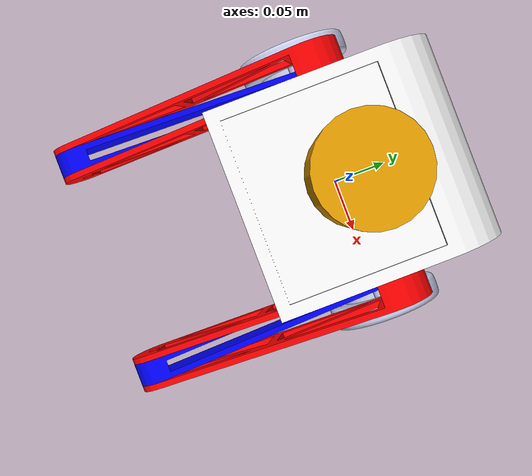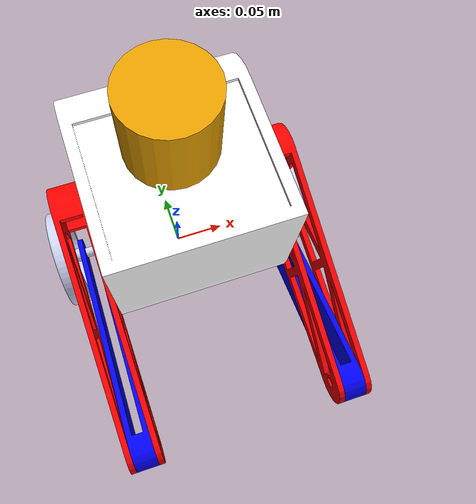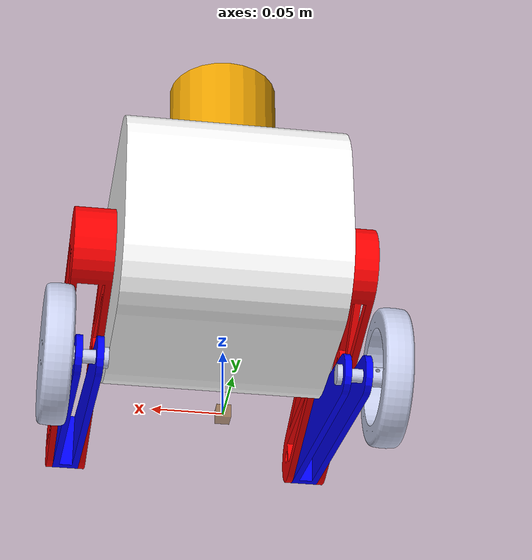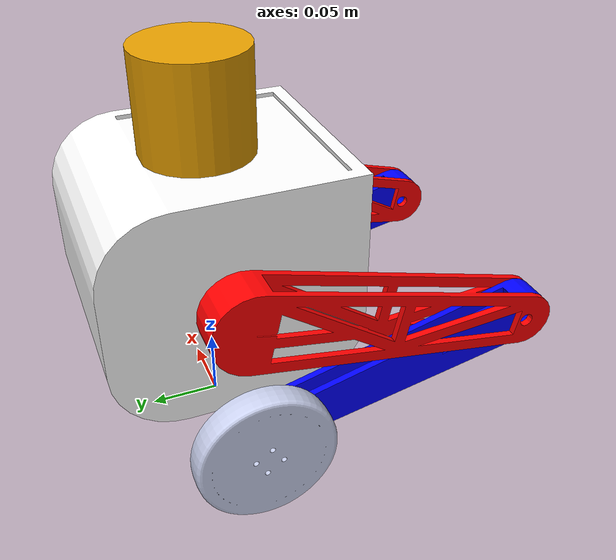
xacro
<?xml version="1.0" encoding="utf-8"?>
<robot
  name="wbrobot">
  <link name="world_link" >
    <visual>
        <geometry>
            <box size = "0.01 0.01 0.01" />
        </geometry>
        <origin xyz="0 0 0" rpy="0 0 0"/>
        <material name="yellow">
            <color rgba="0.5 0.3 0 0.5"/>
        </material>

    </visual>
  </link>
  <link
    name="base_link">
    <inertial>
      <origin
        xyz="-1.5843E-17 -0.0018258 -0.00076631"
        rpy="0 0 0" />
      <mass
        value="8" />
      <inertia
        ixx="0.052838"
        ixy="0"
        ixz="0"
        iyy="0.04905"
        iyz="-0.0011035"
        izz="0.055787" />
    </inertial>
    <visual>
      <origin
        xyz="0 0 0"
        rpy="0 0 0" />
      <geometry>
        <mesh
          filename="package://robot_description/meshes/base_link.STL" />
      </geometry>
      <material
        name="">
        <color
          rgba="1 1 1 1" />
      </material>
    </visual>
    <collision>
      <origin
        xyz="0 0 0"
        rpy="0 0 0" />
      <geometry>
        <mesh
          filename="package://robot_description/meshes/base_link.STL" />
      </geometry>
    </collision>
  </link>

  <!--world_joint-->
  <joint name="world_joint" type="fixed">
    <origin xyz="0 0 0.13" rpy="0 0 0"/>
    <parent link="world_link"/>
    <child link="base_link"/>
  </joint>

  <link
    name="datui1_Link">
    <inertial>
      <origin
        xyz="0.015766 -0.072335 -3.2958E-05"
        rpy="0 0 0" />
      <mass
        value="0.090996" />
      <inertia
        ixx="0.00063669"
        ixy="5.1817E-06"
        ixz="0"
        iyy="3.9867E-05"
        iyz="-1.7891E-06"
        izz="0.00062095" />
    </inertial>
    <visual>
      <origin
        xyz="0 0 0"
        rpy="0 0 0" />
      <geometry>
        <mesh
          filename="package://robot_description/meshes/datui1_Link.STL" />
      </geometry>
      <material
        name="red">
        <color
          rgba="1 0 0 1" />
      </material>
    </visual>
    <collision>
      <origin
        xyz="0 0 0"
        rpy="0 0 0" />
      <geometry>
        <mesh
          filename="package://robot_description/meshes/datui1_Link.STL" />
      </geometry>
    </collision>
  </link>
  <joint
    name="datui1_joint"
    type="revolute">
    <origin
      xyz="-0.08 0 0"
      rpy="2.923 0 3.1416" />
    <parent
      link="base_link" />
    <child
      link="datui1_Link" />
    <axis
      xyz="-1 0 0" />
    <limit
      lower="0"
      upper="3.14"
      effort="200"
      velocity="20" />
  </joint>
  <link
    name="xiaotui1_Link">
    <inertial>
      <origin
        xyz="-0.010009 -0.087975 0"
        rpy="0 0 0" />
      <mass
        value="0.089561" />
      <inertia
        ixx="0.00045806"
        ixy="1.3763E-07"
        ixz="0"
        iyy="1.4234E-05"
        iyz="0"
        izz="0.00045351" />
    </inertial>
    <visual>
      <origin
        xyz="0 0 0"
        rpy="0 0 0" />
      <geometry>
        <mesh
          filename="package://robot_description/meshes/xiaotui1_Link.STL" />
      </geometry>
      <material
        name="blue">
        <color
          rgba="0 0 1 1" />
      </material>
    </visual>
    <collision>
      <origin
        xyz="0 0 0"
        rpy="0 0 0" />
      <geometry>
        <mesh
          filename="package://robot_description/meshes/xiaotui1_Link.STL" />
      </geometry>
    </collision>
  </link>
  <joint
    name="xiaotui1_joint"
    type="revolute">
    <origin
      xyz="0.005 -0.21 0"
      rpy="-0.43633 0 3.1416" />
    <parent
      link="datui1_Link" />
    <child
      link="xiaotui1_Link" />
    <axis
      xyz="-1 0 0" />
    <limit
      lower="0"
      upper="3.14"
      effort="200"
      velocity="20" />
  </joint>
  <link
    name="wheel1_Link">
    <inertial>
      <origin
        xyz="-0.033743 -4.0891E-11 -1.451E-11"
        rpy="0 0 0" />
      <mass
        value="0.10249" />
      <inertia
        ixx="0.00015426"
        ixy="0"
        ixz="0"
        iyy="8.0659E-05"
        iyz="0"
        izz="8.066E-05" />
    </inertial>
    <visual>
      <origin
        xyz="0 0 0"
        rpy="0 0 0" />
      <geometry>
        <mesh
          filename="package://robot_description/meshes/wheel1_Link.STL" />
      </geometry>
      <material
        name="">
        <color
          rgba="0.79216 0.81961 0.93333 1" />
      </material>
    </visual>
    <collision>
      <origin
        xyz="0 0 0"
        rpy="0 0 0" />
      <geometry>
        <mesh
          filename="package://robot_description/meshes/wheel1_Link.STL" />
      </geometry>
    </collision>
  </link>
  <joint
    name="wheel1_joint"
    type="continuous">
    <origin
      xyz="0 -0.21 0"
      rpy="-1.1611 0 0" />
    <parent
      link="xiaotui1_Link" />
    <child
      link="wheel1_Link" />
    <axis
      xyz="-1 0 0" />
    <dynamics damping="0.05"/>
    <limit
      effort="200"
      velocity="20" />
  </joint>
  <link
    name="datui2_Link">
    <inertial>
      <origin
        xyz="0.015766 -0.072335 -3.296E-05"
        rpy="0 0 0" />
      <mass
        value="0.090996" />
      <inertia
        ixx="0.00063669"
        ixy="5.18E-06"
        ixz="0"
        iyy="3.987E-05"
        iyz="-1.79E-06"
        izz="0.00062095" />
    </inertial>
    <visual>
      <origin
        xyz="0 0 0"
        rpy="0 0 0" />
      <geometry>
        <mesh
          filename="package://robot_description/meshes/datui2_Link.STL" />
      </geometry>
      <material
        name="red">
        <color
          rgba="1 0 0 1" />
      </material>
    </visual>
    <collision>
      <origin
        xyz="0 0 0"
        rpy="0 0 0" />
      <geometry>
        <mesh
          filename="package://robot_description/meshes/datui2_Link.STL" />
      </geometry>
    </collision>
  </link>
  <joint
    name="datui2_joint"
    type="revolute">
    <origin
      xyz="0.08 0 0"
      rpy="0.218 0 0" />
    <parent
      link="base_link" />
    <child
      link="datui2_Link" />
    <axis
      xyz="1 0 0" />
    <limit
      lower="0"
      upper="3.14"
      effort="200"
      velocity="20" />
  </joint>
  <link
    name="xiaotui2_Link">
    <inertial>
      <origin
        xyz="-0.010009 -0.087975 0"
        rpy="0 0 0" />
      <mass
        value="0.089561" />
      <inertia
        ixx="0.00045806"
        ixy="1.3763E-07"
        ixz="0"
        iyy="1.4234E-05"
        iyz="0"
        izz="0.00045351" />
    </inertial>
    <visual>
      <origin
        xyz="0 0 0"
        rpy="0 0 0" />
      <geometry>
        <mesh
          filename="package://robot_description/meshes/xiaotui2_Link.STL" />
      </geometry>
      <material
        name="blue">
        <color
          rgba="0 0 1 1" />
      </material>
    </visual>
    <collision>
      <origin
        xyz="0 0 0"
        rpy="0 0 0" />
      <geometry>
        <mesh
          filename="package://robot_description/meshes/xiaotui2_Link.STL" />
      </geometry>
    </collision>
  </link>
  <joint
    name="xiaotui2_joint"
    type="revolute">
    <origin
      xyz="0.005 -0.21 0"
      rpy="0.43633 0 3.1416" />
    <parent
      link="datui2_Link" />
    <child
      link="xiaotui2_Link" />
    <axis
      xyz="1 0 0" />
    <limit
      lower="0"
      upper="3.14"
      effort="200"
      velocity="20" />
  </joint>
  <link
    name="wheel2_Link">
    <inertial>
      <origin
        xyz="-0.033743 -4.089E-11 -1.451E-11"
        rpy="0 0 0" />
      <mass
        value="0.10249" />
      <inertia
        ixx="0.00015426"
        ixy="0"
        ixz="0"
        iyy="8.0659E-05"
        iyz="0"
        izz="8.066E-05" />
    </inertial>
    <visual>
      <origin
        xyz="0 0 0"
        rpy="0 0 0" />
      <geometry>
        <mesh
          filename="package://robot_description/meshes/wheel2_Link.STL" />
      </geometry>
      <material
        name="">
        <color
          rgba="0.79216 0.81961 0.93333 1" />
      </material>
    </visual>
    <collision>
      <origin
        xyz="0 0 0"
        rpy="0 0 0" />
      <geometry>
        <mesh
          filename="package://robot_description/meshes/wheel2_Link.STL" />
      </geometry>
    </collision>
  </link>
  <joint
    name="wheel2_joint"
    type="continuous">
    <origin
      xyz="0 -0.21 0"
      rpy="-1.9805 0 0" />
    <parent
      link="xiaotui2_Link" />
    <child
      link="wheel2_Link" />
    <axis
      xyz="1 0 0" />
    <dynamics damping="0.05"/>
    <limit
      effort="200"
      velocity="20" />
  </joint>
  <!--传动-->
  <transmission name="datui1_joint_trans">
    <type>transmission_interface/SimpleTransmission</type>
    <joint name="datui1_joint">
      <hardwareInterface>hardware_interface/PositionJointInterface</hardwareInterface>
    </joint>
    <actuator name="$datui1_joint_motor">
      <hardwareInterface>hardware_interface/PositionJointInterface</hardwareInterface>
      <mechanicalReduction>1</mechanicalReduction>
    </actuator>
  </transmission>

  <transmission name="xiaotui1_joint_trans">
    <type>transmission_interface/SimpleTransmission</type>
    <joint name="xiaotui1_joint">
      <hardwareInterface>hardware_interface/PositionJointInterface</hardwareInterface>
    </joint>
    <actuator name="$xiaotui1_joint_motor">
      <hardwareInterface>hardware_interface/PositionJointInterface</hardwareInterface>
      <mechanicalReduction>1</mechanicalReduction>
    </actuator>
  </transmission>

  <transmission name="wheel1_joint_trans">
    <type>transmission_interface/SimpleTransmission</type>
    <joint name="wheel1_joint">
      <hardwareInterface>hardware_interface/EffortJointInterface</hardwareInterface>
    </joint>
    <actuator name="$wheel1_joint_motor">
      <hardwareInterface>hardware_interface/EffortJointInterface</hardwareInterface>
      <mechanicalReduction>1</mechanicalReduction>
    </actuator>
  </transmission>

  <transmission name="datui2_joint_trans">
    <type>transmission_interface/SimpleTransmission</type>
    <joint name="datui2_joint">
      <hardwareInterface>hardware_interface/PositionJointInterface</hardwareInterface>
    </joint>
    <actuator name="$datui2_joint_motor">
      <hardwareInterface>hardware_interface/PositionJointInterface</hardwareInterface>
      <mechanicalReduction>1</mechanicalReduction>
    </actuator>
  </transmission>

  <transmission name="xiaotui2_joint_trans">
    <type>transmission_interface/SimpleTransmission</type>
    <joint name="xiaotui2_joint">
      <hardwareInterface>hardware_interface/PositionJointInterface</hardwareInterface>
    </joint>
    <actuator name="$xiaotui2_joint_motor">
      <hardwareInterface>hardware_interface/PositionJointInterface</hardwareInterface>
      <mechanicalReduction>1</mechanicalReduction>
    </actuator>
  </transmission>

  <transmission name="wheel2_joint_trans">
    <type>transmission_interface/SimpleTransmission</type>
    <joint name="wheel2_joint">
      <hardwareInterface>hardware_interface/EffortJointInterface</hardwareInterface>
    </joint>
    <actuator name="$wheel2_joint_motor">
      <hardwareInterface>hardware_interface/EffortJointInterface</hardwareInterface>
      <mechanicalReduction>1</mechanicalReduction>
    </actuator>
  </transmission>

  <!--Gazebo Plugin for ROS Control-->
  <!--This allows for other ROS to interact with
      Gazebo in a generic way.-->
  <gazebo>
    <plugin name="gazebo_ros_control" filename="libgazebo_ros_control.so">
      <robotNamespace>/</robotNamespace>
    </plugin>
  </gazebo>
  <gazebo reference="base_link">
    <gravity>true</gravity>
    <sensor name="imu_sensor" type="imu">
      <always_on>true</always_on>
      <update_rate>800</update_rate>
      <visualize>true</visualize>
      <topic>__default_topic__</topic>
      <plugin filename="libgazebo_ros_imu_sensor.so" name="imu_plugin">
        <topicName>imu</topicName>
        <bodyName>base_link</bodyName>
        <updateRateHZ>800</updateRateHZ>
        <gaussianNoise>0.0</gaussianNoise>
        <xyzOffset>0 0 0</xyzOffset>
        <rpyOffset>0 0 0</rpyOffset>
        <frameName>base_link</frameName>
        <initialOrientationAsReference>false</initialOrientationAsReference>
      </plugin>
      <pose>0 0 0 0 0 0</pose>
    </sensor>
  </gazebo>

  <gazebo reference="wheel1_Link">
    <mu2 value="100.0"/>
    <kp value="10000000.0" />
    <kd value="1.0" />
    <material>Gazebo/Red</material>
  </gazebo>

    <gazebo reference="wheel2_Link">
    <mu2 value="100.0"/>
    <kp value="10000000.0" />
    <kd value="1.0" />
    <material>Gazebo/Red</material>
  </gazebo>

  <gazebo reference="datui1_Link">
    <material>Gazebo/Red</material>
  </gazebo>

  <gazebo reference="datui2_Link">
    <material>Gazebo/Red</material>
  </gazebo>

  <gazebo reference="xiaotui1_Link">
    <material>Gazebo/Blue</material>
  </gazebo>
  <gazebo reference="xiaotui2_Link">
    <material>Gazebo/Blue</material>
  </gazebo>

 <joint name="hokuyo_joint" type="fixed">
    <axis xyz="0 1 0" />
    <origin xyz="0 0 0.1" rpy="0 0 0"/>
    <parent link="base_link"/>
    <child link="hokuyo_link"/>
  </joint>

  <!-- Hokuyo Laser -->
  <link name="hokuyo_link">
    <collision>
      <origin xyz="0 0 0" rpy="0 0 0"/>
      <geometry>
        <box size="0.1 0.1 0.1"/>
      </geometry>
    </collision>

    <visual>
      <origin xyz="0 0 0" rpy="0 0 0"/>
      <geometry>
        <cylinder radius="0.04" length="0.1"/>
      </geometry>
    </visual>

    <inertial>
      <mass value="0" />
      <origin xyz="0 0 0" rpy="0 0 0"/>
      <inertia ixx="0" ixy="0" ixz="0" iyy="0" iyz="0" izz="0" />
    </inertial>
  </link>

   <!-- hokuyo -->
  <gazebo reference="hokuyo_link">
    <sensor type="gpu_ray" name="head_hokuyo_sensor">
      <pose>0 0 0 0 0 0</pose>
      <visualize>false</visualize>
      <update_rate>40</update_rate>
      <ray>
        <scan>
          <horizontal>
            <samples>720</samples>
            <resolution>1</resolution>
            <min_angle>-1.570796</min_angle>
            <max_angle>1.570796</max_angle>
          </horizontal>
        </scan>
        <range>
          <min>0.10</min>
          <max>30.0</max>
          <resolution>0.01</resolution>
        </range>
        <noise>
          <type>gaussian</type>
          <mean>0.0</mean>
          <stddev>0.01</stddev>
        </noise>
      </ray>
      <plugin name="gazebo_ros_head_hokuyo_controller" filename="libgazebo_ros_gpu_laser.so">
        <topicName>/laser/scan</topicName>
        <frameName>hokuyo_link</frameName>
      </plugin>
    </sensor>
  </gazebo>
</robot>
